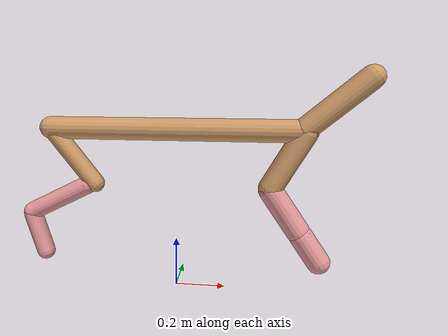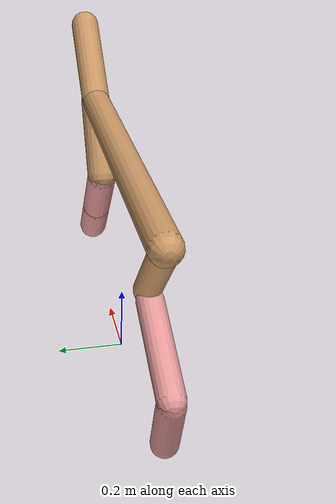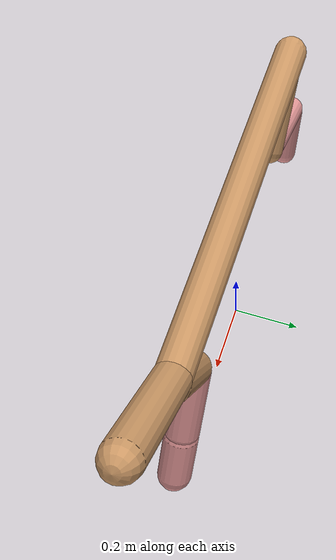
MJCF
<mujoco model="cheetah">
  <compiler angle="radian" coordinate="local" inertiafromgeom="true" settotalmass="14" />
  <default>
    <joint armature=".1" damping=".01" limited="true" solimplimit="0 .8 .03" solreflimit=".02 1" stiffness="8" />
    <geom conaffinity="0" condim="3" contype="1" friction="0.8 .1 .1" rgba="0.8 0.6 .4 1" solimp="0.0 0.8 0.01" solref="0.02 1" />
    <motor ctrllimited="true" ctrlrange="-1 1" />
  </default>
  <size nstack="300000" nuser_geom="1" />
  <option gravity="0 0 -9.81" timestep="0.01" />
  <worldbody>
    <body name="torso" pos="0.0 0.0 0.6445700690681111">
      <joint armature="0" axis="1 0 0" damping="0" limited="false" name="ignorex" pos="0 0 0" stiffness="0" type="slide" />
      <joint armature="0" axis="0 0 1" damping="0" limited="false" name="ignorez" pos="0 0 0" stiffness="0" type="slide" />
      <joint armature="0" axis="0 1 0" damping="0" limited="false" name="ignorey" pos="0 0 0" stiffness="0" type="hinge" />
      <geom fromto="-0.5 0.0 0.0 0.49695066185119197 0.0 0.0" name="torso" size="0.04436668598342865" type="capsule" />
      <geom axisangle="0 1 0 .87" name="head" pos="0.5969506618511919 0.0 0.1" size="0.0457113643974161 0.15" type="capsule" />

      <body name="bthigh" pos="-.5 0 0">
        <joint axis="0 1 0" damping="6" name="bthigh" pos="0 0 0" range="-.52 1.05" stiffness="240" type="hinge" />
        <geom axisangle="0 1 0 -3.8" name="bthigh" pos="0.09123076931703805 0.0 -0.11860000011214947" size="0.03706001556421053 0.13061739230132471" type="capsule" />
        <body name="bshin" pos="0.1424615386340761 0.0 -0.22720000022429893">
          <joint axis="0 1 0" damping="4.5" name="bshin" pos="0 0 0" range="-.785 .785" stiffness="180" type="hinge" />
          <geom axisangle="0 1 0 -2.03" name="bshin" pos="-0.12669221165188288 0.0 -0.06334610582594144" rgba="0.9 0.6 0.6 1" size="0.03706001556421053 0.13512144031171522" type="capsule" />
          <body name="bfoot" pos="-0.25338442330376576 0.0 -0.12669221165188288">
            <joint axis="0 1 0" damping="3" name="bfoot" pos="0 0 0" range="-.4 .785" stiffness="120" type="hinge" />
            <geom axisangle="0 1 0 -.27" name="bfoot" pos="0.027245070617291776 0.0 -0.08809239499591008" rgba="0.9 0.6 0.6 1" size="0.03706001556421053 0.08467610259534154" type="capsule" />
            <inertial mass="10" />
          </body>
        </body>
      </body>
      <body name="fthigh" pos="0.49695066185119197 0.0 0.0">
        <joint axis="0 1 0" damping="4.5" name="fthigh" pos="0 0 0" range="-1.5 0.8" stiffness="180" type="hinge" />
        <geom axisangle="0 1 0 .52" name="fthigh" pos="-0.06611440553653813 0.0 -0.11333898091977965" size="0.04674046788351037 0.12528851379294853" type="capsule" />
        <body name="fshin" pos="-0.13222881107307627 0.0 -0.2266779618395593">
          <joint axis="0 1 0" damping="3" name="fshin" pos="0 0 0" range="-1.2 1.1" stiffness="120" type="hinge" />
          <geom axisangle="0 1 0 -.6" name="fshin" pos="0.06140157709011317 0.0 -0.08501756827861823" rgba="0.9 0.6 0.6 1" size="0.04674046788351037 0.09985400347407927" type="capsule" />
          <body name="ffoot" pos="0.12280315418022635 0.0 -0.17003513655723645">
            <joint axis="0 1 0" damping="1.5" name="ffoot" pos="0 0 0" range="-3.1 -0.3" stiffness="60" type="hinge" />
            <geom axisangle="0 1 0 -.6" name="ffoot" pos="0.04280523962801451 0.0 -0.0665859283102448" rgba="0.9 0.6 0.6 1" size="0.04674046788351037 0.06594132304892028" type="capsule" />
            <inertial mass="10" />
          </body>
        </body>
      </body>
    </body>
  </worldbody>
  <actuator>
    <motor gear="120" joint="bthigh" name="bthigh" />
    <motor gear="90" joint="bshin" name="bshin" />
    <motor gear="60" joint="bfoot" name="bfoot" />
    <motor gear="120" joint="fthigh" name="fthigh" />
    <motor gear="60" joint="fshin" name="fshin" />
    <motor gear="30" joint="ffoot" name="ffoot" />
  </actuator>
</mujoco>
